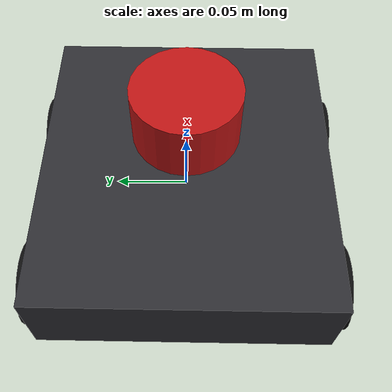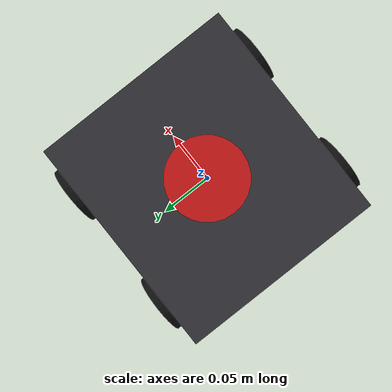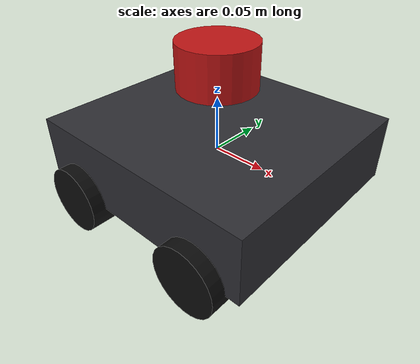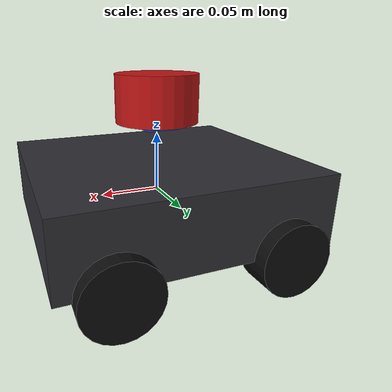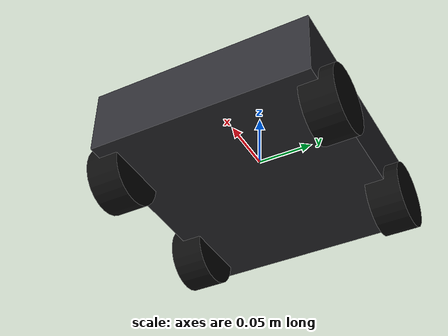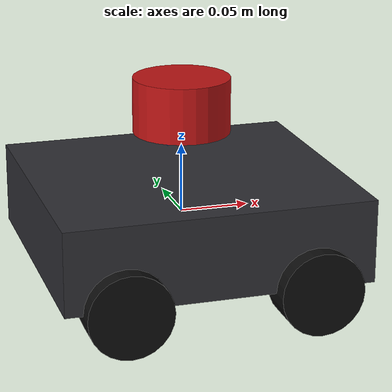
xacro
<?xml version="1.0"?>
<robot name="rover" xmlns:xacro="http://www.ros.org/wiki/xacro">
  <xacro:arg name="wheel_radius" default="0.03"/>
  <xacro:arg name="wheel_width" default="0.03"/>
  <xacro:arg name="wheelbase" default="0.135"/>
  <xacro:arg name="track_width" default="0.195"/>
  <xacro:arg name="chassis_length" default="0.22"/>
  <xacro:arg name="chassis_width" default="0.20"/>
  <xacro:arg name="chassis_height" default="0.06"/>
  <xacro:arg name="imu_x" default="0.0"/>
  <xacro:arg name="imu_y" default="0.0"/>
  <xacro:arg name="imu_z" default="0.06"/>
  <xacro:arg name="imu_roll" default="0.0"/>
  <xacro:arg name="imu_pitch" default="0.0"/>
  <xacro:arg name="imu_yaw" default="0.0"/>
  <xacro:arg name="lidar_x" default="0.0"/>
  <xacro:arg name="lidar_y" default="0.0"/>
  <xacro:arg name="lidar_z" default="0.10"/>
  <xacro:arg name="lidar_roll" default="0.0"/>
  <xacro:arg name="lidar_pitch" default="0.0"/>
  <xacro:arg name="lidar_yaw" default="0.0"/>

  <xacro:property name="r" value="$(arg wheel_radius)"/>
  <xacro:property name="ww" value="$(arg wheel_width)"/>
  <xacro:property name="wb" value="$(arg wheelbase)"/>
  <xacro:property name="tw" value="$(arg track_width)"/>
  <xacro:property name="cl" value="$(arg chassis_length)"/>
  <xacro:property name="cw" value="$(arg chassis_width)"/>
  <xacro:property name="ch" value="$(arg chassis_height)"/>

  <link name="base_link">
    <visual>
      <geometry><box size="${cl} ${cw} ${ch}"/></geometry>
      <material name="dark"><color rgba="0.18 0.18 0.20 1"/></material>
    </visual>
    <collision><geometry><box size="${cl} ${cw} ${ch}"/></geometry></collision>
    <inertial>
      <mass value="3.0"/>
      <origin xyz="0 0 0"/>
      <inertia ixx="0.012" ixy="0" ixz="0" iyy="0.015" iyz="0" izz="0.020"/>
    </inertial>
  </link>

  <xacro:macro name="wheel" params="name x y axis_y">
    <link name="${name}_wheel_link">
      <visual>
        <origin rpy="1.57079632679 0 0"/>
        <geometry><cylinder radius="${r}" length="${ww}"/></geometry>
        <material name="rubber"><color rgba="0.05 0.05 0.05 1"/></material>
      </visual>
      <collision>
        <origin rpy="1.57079632679 0 0"/>
        <geometry><cylinder radius="${r}" length="${ww}"/></geometry>
      </collision>
      <inertial>
        <mass value="0.15"/>
        <inertia ixx="0.0001" ixy="0" ixz="0" iyy="0.0001" iyz="0" izz="0.0001"/>
      </inertial>
    </link>
    <joint name="${name}_wheel_joint" type="continuous">
      <parent link="base_link"/>
      <child link="${name}_wheel_link"/>
      <origin xyz="${x} ${y} ${-ch/2}"/>
      <axis xyz="0 ${axis_y} 0"/>
    </joint>
  </xacro:macro>

  <xacro:wheel name="front_left"  x="${ wb/2}" y="${ tw/2}" axis_y="1"/>
  <xacro:wheel name="front_right" x="${ wb/2}" y="${-tw/2}" axis_y="-1"/>
  <xacro:wheel name="rear_left"   x="${-wb/2}" y="${ tw/2}" axis_y="1"/>
  <xacro:wheel name="rear_right"  x="${-wb/2}" y="${-tw/2}" axis_y="-1"/>

  <link name="imu_link">
    <visual>
      <geometry><box size="0.03 0.03 0.01"/></geometry>
      <material name="imu_blue"><color rgba="0.1 0.3 0.8 1"/></material>
    </visual>
  </link>
  <joint name="imu_joint" type="fixed">
    <parent link="base_link"/>
    <child link="imu_link"/>
    <origin xyz="$(arg imu_x) $(arg imu_y) $(arg imu_z)"
            rpy="$(arg imu_roll) $(arg imu_pitch) $(arg imu_yaw)"/>
  </joint>

  <link name="lidar_link">
    <visual>
      <origin xyz="0 0 -0.020"/>
      <geometry><cylinder radius="0.035" length="0.040"/></geometry>
      <material name="lidar_red"><color rgba="0.75 0.08 0.08 1"/></material>
    </visual>
    <collision>
      <origin xyz="0 0 -0.020"/>
      <geometry><cylinder radius="0.035" length="0.040"/></geometry>
    </collision>
    <inertial>
      <origin xyz="0 0 -0.020"/>
      <mass value="0.17"/>
      <inertia ixx="0.00008" ixy="0" ixz="0" iyy="0.00008" iyz="0" izz="0.00010"/>
    </inertial>
  </link>
  <joint name="lidar_joint" type="fixed">
    <parent link="base_link"/>
    <child link="lidar_link"/>
    <origin xyz="$(arg lidar_x) $(arg lidar_y) $(arg lidar_z)"
            rpy="$(arg lidar_roll) $(arg lidar_pitch) $(arg lidar_yaw)"/>
  </joint>
</robot>
